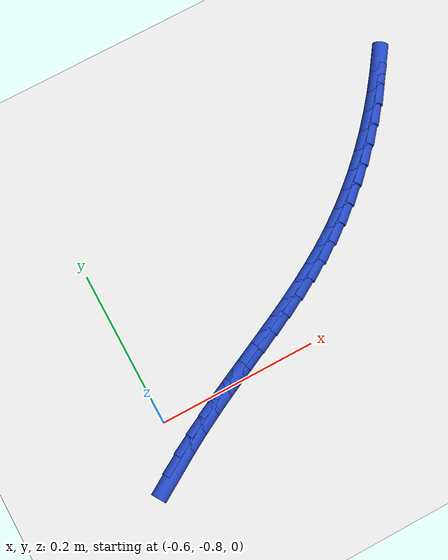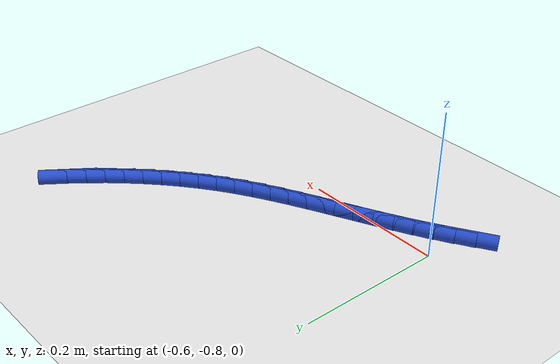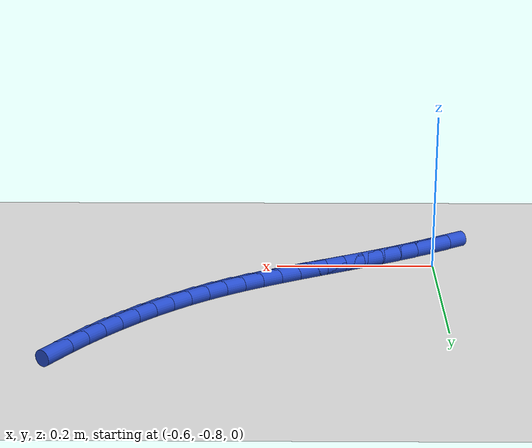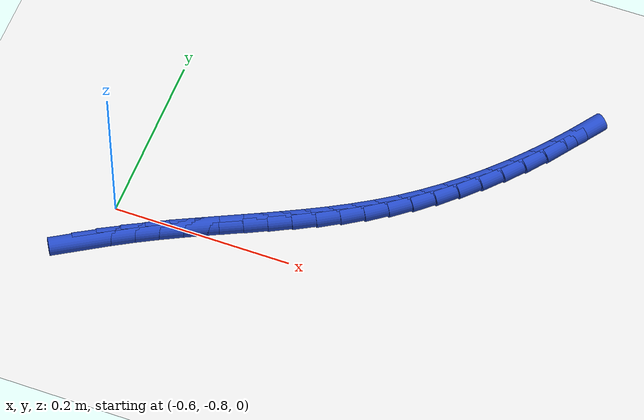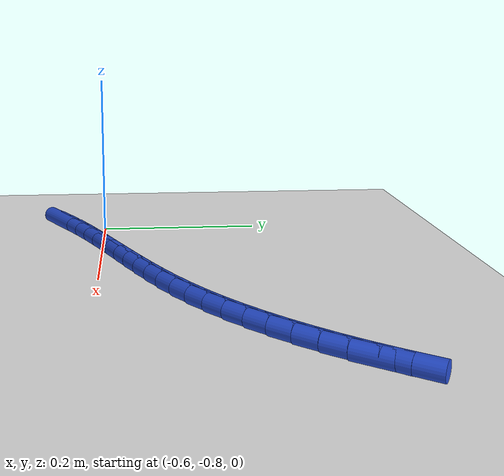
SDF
<sdf version="1.6">
 <world name="default">
  <model name="ground_plane">
   <static>1</static>
   <link name="link">
    <collision name="collision">
     <geometry><plane><normal>0 0 1</normal><size>100 100</size></plane></geometry>
     <surface><friction><ode><mu>100</mu><mu2>50</mu2></ode></friction></surface>
    </collision>
    <visual name="visual">
     <cast_shadows>0</cast_shadows>
     <geometry><plane><normal>0 0 1</normal><size>100 100</size></plane></geometry>
     <material>
      <script><uri>file://media/materials/scripts/gazebo.material</uri><name>Gazebo/WhiteGlow</name></script>
     </material>
    </visual>
   </link>
  </model>
  <model name="line">
   <link name="link_217">
    <pose>-0.611941655370255 -0.8556939867375679 0.01 0 1.57 0.5503284494816596</pose>
    <collision name="collision">
     <geometry><cylinder><radius>0.01</radius><length>0.08</length></cylinder></geometry>
    </collision>
    <visual name="visual">
     <material>
      <script><name>Gazebo/Blue</name><uri>file://media/materials/scripts/gazebo.material</uri></script>
     </material>
     <geometry><cylinder><radius>0.01</radius><length>0.08</length></cylinder></geometry>
    </visual>
   </link>
   <link name="link_218">
    <pose>-0.5894404150523181 -0.841888188342025 0.01 0 1.57 0.524500561530606</pose>
    <collision name="collision">
     <geometry><cylinder><radius>0.01</radius><length>0.08</length></cylinder></geometry>
    </collision>
    <visual name="visual">
     <material>
      <script><name>Gazebo/Blue</name><uri>file://media/materials/scripts/gazebo.material</uri></script>
     </material>
     <geometry><cylinder><radius>0.01</radius><length>0.08</length></cylinder></geometry>
    </visual>
   </link>
   <link name="link_219">
    <pose>-0.5666095537085084 -0.8286793186925371 0.01 0 1.57 0.4971927518311566</pose>
    <collision name="collision">
     <geometry><cylinder><radius>0.01</radius><length>0.08</length></cylinder></geometry>
    </collision>
    <visual name="visual">
     <material>
      <script><name>Gazebo/Blue</name><uri>file://media/materials/scripts/gazebo.material</uri></script>
     </material>
     <geometry><cylinder><radius>0.01</radius><length>0.08</length></cylinder></geometry>
    </visual>
   </link>
   <link name="link_220">
    <pose>-0.5434549286497076 -0.8161141603822034 0.01 0 1.57 0.4748542363941124</pose>
    <collision name="collision">
     <geometry><cylinder><radius>0.01</radius><length>0.08</length></cylinder></geometry>
    </collision>
    <visual name="visual">
     <material>
      <script><name>Gazebo/Blue</name><uri>file://media/materials/scripts/gazebo.material</uri></script>
     </material>
     <geometry><cylinder><radius>0.01</radius><length>0.08</length></cylinder></geometry>
    </visual>
   </link>
   <link name="link_221">
    <pose>-0.5200473857831455 -0.8040806278754616 0.01 0 1.57 0.4595447161317221</pose>
    <collision name="collision">
     <geometry><cylinder><radius>0.01</radius><length>0.08</length></cylinder></geometry>
    </collision>
    <visual name="visual">
     <material>
      <script><name>Gazebo/Blue</name><uri>file://media/materials/scripts/gazebo.material</uri></script>
     </material>
     <geometry><cylinder><radius>0.01</radius><length>0.08</length></cylinder></geometry>
    </visual>
   </link>
   <link name="link_222">
    <pose>-0.4964782103368948 -0.792416670614628 0.01 0 1.57 0.45127729071315603</pose>
    <collision name="collision">
     <geometry><cylinder><radius>0.01</radius><length>0.08</length></cylinder></geometry>
    </collision>
    <visual name="visual">
     <material>
      <script><name>Gazebo/Blue</name><uri>file://media/materials/scripts/gazebo.material</uri></script>
     </material>
     <geometry><cylinder><radius>0.01</radius><length>0.08</length></cylinder></geometry>
    </visual>
   </link>
   <link name="link_223">
    <pose>-0.47283869500844244 -0.7809602197826375 0.01 0 1.57 0.45006683515867707</pose>
    <collision name="collision">
     <geometry><cylinder><radius>0.01</radius><length>0.08</length></cylinder></geometry>
    </collision>
    <visual name="visual">
     <material>
      <script><name>Gazebo/Blue</name><uri>file://media/materials/scripts/gazebo.material</uri></script>
     </material>
     <geometry><cylinder><radius>0.01</radius><length>0.08</length></cylinder></geometry>
    </visual>
   </link>
   <link name="link_224">
    <pose>-0.4492201324952749 -0.7695492065624251 0.01 0 1.57 0.4559431833059339</pose>
    <collision name="collision">
     <geometry><cylinder><radius>0.01</radius><length>0.08</length></cylinder></geometry>
    </collision>
    <visual name="visual">
     <material>
      <script><name>Gazebo/Blue</name><uri>file://media/materials/scripts/gazebo.material</uri></script>
     </material>
     <geometry><cylinder><radius>0.01</radius><length>0.08</length></cylinder></geometry>
    </visual>
   </link>
   <link name="link_225">
    <pose>-0.42571381549487886 -0.7580215621369256 0.01 0 1.57 0.46895315781754837</pose>
    <collision name="collision">
     <geometry><cylinder><radius>0.01</radius><length>0.08</length></cylinder></geometry>
    </collision>
    <visual name="visual">
     <material>
      <script><name>Gazebo/Blue</name><uri>file://media/materials/scripts/gazebo.material</uri></script>
     </material>
     <geometry><cylinder><radius>0.01</radius><length>0.08</length></cylinder></geometry>
    </visual>
   </link>
   <link name="link_226">
    <pose>-0.4024110367047406 -0.7462152176890738 0.01 0 1.57 0.4891518945354702</pose>
    <collision name="collision">
     <geometry><cylinder><radius>0.01</radius><length>0.08</length></cylinder></geometry>
    </collision>
    <visual name="visual">
     <material>
      <script><name>Gazebo/Blue</name><uri>file://media/materials/scripts/gazebo.material</uri></script>
     </material>
     <geometry><cylinder><radius>0.01</radius><length>0.08</length></cylinder></geometry>
    </visual>
   </link>
   <link name="link_227">
    <pose>-0.3794030888223471 -0.7339681044018046 0.01 0 1.57 0.5165829069617338</pose>
    <collision name="collision">
     <geometry><cylinder><radius>0.01</radius><length>0.08</length></cylinder></geometry>
    </collision>
    <visual name="visual">
     <material>
      <script><name>Gazebo/Blue</name><uri>file://media/materials/scripts/gazebo.material</uri></script>
     </material>
     <geometry><cylinder><radius>0.01</radius><length>0.08</length></cylinder></geometry>
    </visual>
   </link>
   <link name="link_228">
    <pose>-0.3567812645451847 -0.7211181534580531 0.01 0 1.57 0.5512464166784703</pose>
    <collision name="collision">
     <geometry><cylinder><radius>0.01</radius><length>0.08</length></cylinder></geometry>
    </collision>
    <visual name="visual">
     <material>
      <script><name>Gazebo/Blue</name><uri>file://media/materials/scripts/gazebo.material</uri></script>
     </material>
     <geometry><cylinder><radius>0.01</radius><length>0.08</length></cylinder></geometry>
    </visual>
   </link>
   <link name="link_229">
    <pose>-0.33463685657073955 -0.7075032960407535 0.01 0 1.57 0.5930422237329691</pose>
    <collision name="collision">
     <geometry><cylinder><radius>0.01</radius><length>0.08</length></cylinder></geometry>
    </collision>
    <visual name="visual">
     <material>
      <script><name>Gazebo/Blue</name><uri>file://media/materials/scripts/gazebo.material</uri></script>
     </material>
     <geometry><cylinder><radius>0.01</radius><length>0.08</length></cylinder></geometry>
    </visual>
   </link>
   <link name="link_230">
    <pose>-0.3130610359165245 -0.692961824667397 0.01 0 1.57 0.639260584697332</pose>
    <collision name="collision">
     <geometry><cylinder><radius>0.01</radius><length>0.08</length></cylinder></geometry>
    </collision>
    <visual name="visual">
     <material>
      <script><name>Gazebo/Blue</name><uri>file://media/materials/scripts/gazebo.material</uri></script>
     </material>
     <geometry><cylinder><radius>0.01</radius><length>0.08</length></cylinder></geometry>
    </visual>
   </link>
   <link name="link_231">
    <pose>-0.292123186685543 -0.6773967291492144 0.01 0 1.57 0.6844383790162033</pose>
    <collision name="collision">
     <geometry><cylinder><radius>0.01</radius><length>0.08</length></cylinder></geometry>
    </collision>
    <visual name="visual">
     <material>
      <script><name>Gazebo/Blue</name><uri>file://media/materials/scripts/gazebo.material</uri></script>
     </material>
     <geometry><cylinder><radius>0.01</radius><length>0.08</length></cylinder></geometry>
    </visual>
   </link>
   <link name="link_232">
    <pose>-0.2718459187569939 -0.6608498976116471 0.01 0 1.57 0.7279622004670357</pose>
    <collision name="collision">
     <geometry><cylinder><radius>0.01</radius><length>0.08</length></cylinder></geometry>
    </collision>
    <visual name="visual">
     <material>
      <script><name>Gazebo/Blue</name><uri>file://media/materials/scripts/gazebo.material</uri></script>
     </material>
     <geometry><cylinder><radius>0.01</radius><length>0.08</length></cylinder></geometry>
    </visual>
   </link>
   <link name="link_233">
    <pose>-0.25224578814996035 -0.6433811954098196 0.01 0 1.57 0.7699382270929106</pose>
    <collision name="collision">
     <geometry><cylinder><radius>0.01</radius><length>0.08</length></cylinder></geometry>
    </collision>
    <visual name="visual">
     <material>
      <script><name>Gazebo/Blue</name><uri>file://media/materials/scripts/gazebo.material</uri></script>
     </material>
     <geometry><cylinder><radius>0.01</radius><length>0.08</length></cylinder></geometry>
    </visual>
   </link>
   <link name="link_234">
    <pose>-0.2333393508835251 -0.6250504878988554 0.01 0 1.57 0.8104848833491577</pose>
    <collision name="collision">
     <geometry><cylinder><radius>0.01</radius><length>0.08</length></cylinder></geometry>
    </collision>
    <visual name="visual">
     <material>
      <script><name>Gazebo/Blue</name><uri>file://media/materials/scripts/gazebo.material</uri></script>
     </material>
     <geometry><cylinder><radius>0.01</radius><length>0.08</length></cylinder></geometry>
    </visual>
   </link>
   <link name="link_235">
    <pose>-0.21514316297677147 -0.6059176404338786 0.01 0 1.57 0.8497294463329897</pose>
    <collision name="collision">
     <geometry><cylinder><radius>0.01</radius><length>0.08</length></cylinder></geometry>
    </collision>
    <visual name="visual">
     <material>
      <script><name>Gazebo/Blue</name><uri>file://media/materials/scripts/gazebo.material</uri></script>
     </material>
     <geometry><cylinder><radius>0.01</radius><length>0.08</length></cylinder></geometry>
    </visual>
   </link>
   <link name="link_236">
    <pose>-0.1976737804487819 -0.5860425183700136 0.01 0 1.57 0.887805432925906</pose>
    <collision name="collision">
     <geometry><cylinder><radius>0.01</radius><length>0.08</length></cylinder></geometry>
    </collision>
    <visual name="visual">
     <material>
      <script><name>Gazebo/Blue</name><uri>file://media/materials/scripts/gazebo.material</uri></script>
     </material>
     <geometry><cylinder><radius>0.01</radius><length>0.08</length></cylinder></geometry>
    </visual>
   </link>
   <link name="link_237">
    <pose>-0.1809477593186404 -0.5654849870623848 0.01 0 1.57 0.9248506997429606</pose>
    <collision name="collision">
     <geometry><cylinder><radius>0.01</radius><length>0.08</length></cylinder></geometry>
    </collision>
    <visual name="visual">
     <material>
      <script><name>Gazebo/Blue</name><uri>file://media/materials/scripts/gazebo.material</uri></script>
     </material>
     <geometry><cylinder><radius>0.01</radius><length>0.08</length></cylinder></geometry>
    </visual>
   </link>
   <link name="link_238">
    <pose>-0.16498165560542946 -0.5443049118661157 0.01 0 1.57 0.961006172804229</pose>
    <collision name="collision">
     <geometry><cylinder><radius>0.01</radius><length>0.08</length></cylinder></geometry>
    </collision>
    <visual name="visual">
     <material>
      <script><name>Gazebo/Blue</name><uri>file://media/materials/scripts/gazebo.material</uri></script>
     </material>
     <geometry><cylinder><radius>0.01</radius><length>0.08</length></cylinder></geometry>
    </visual>
   </link>
  </model>
 </world>
</sdf>
